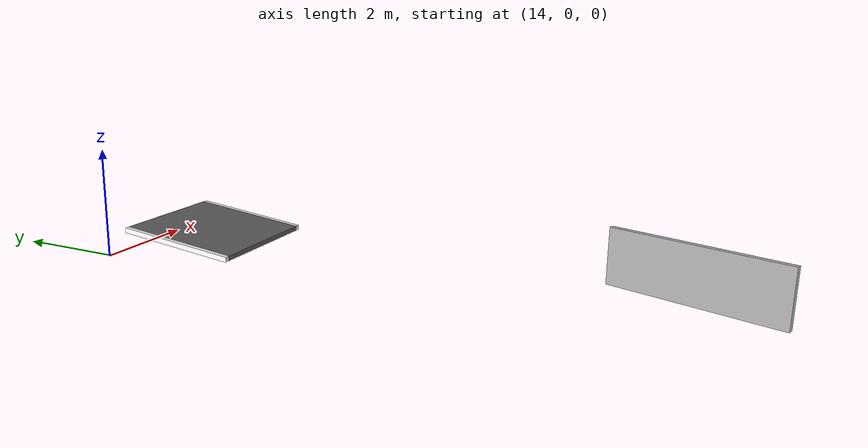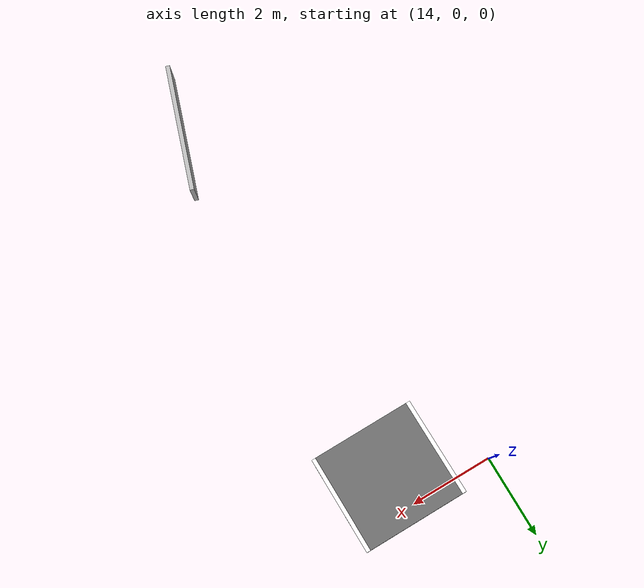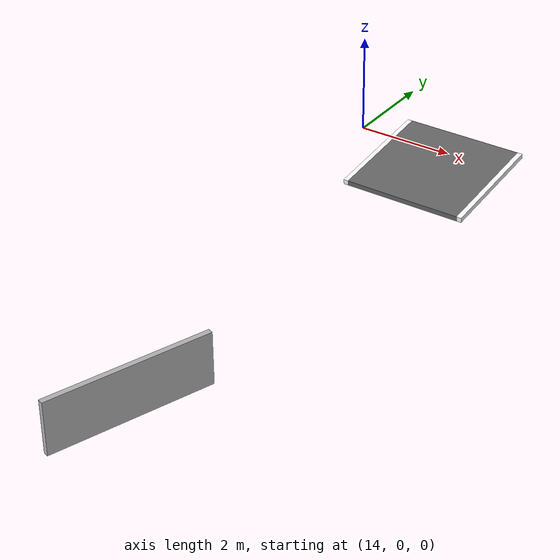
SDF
<sdf version="1.7">
 <world name="default">
  <model name="barricade_2">
   <static>1</static>
   <pose>16.1541 -10.0442 0.5 0 0 1.2346</pose>
   <link name="link">
    <collision name="collision"><geometry><box><size>3 0.1 1</size></box></geometry></collision>
    <visual name="visual"><geometry><box><size>3 0.1 1</size></box></geometry></visual>
   </link>
  </model>
  <model name="ramp_up">
   <static>1</static>
   <pose>16.1541 -0.8357 0.1 0.1122 0 0</pose>
   <link name="link">
    <collision name="collision">
     <geometry><box><size>2.41 2.41 0.1</size></box></geometry>
     <surface>
      <friction><ode><mu>100</mu><mu2>50</mu2><slip1>0.0</slip1><slip2>0.0</slip2></ode></friction>
     </surface>
    </collision>
    <visual name="visual">
     <geometry><box><size>2.41 2.41 0.1</size></box></geometry>
     <material><ambient>0.4 0.7 0.6 1</ambient><diffuse>0.4 0.4 0.4 1</diffuse></material>
    </visual>
   </link>
  </model>
  <model name="ramp_up_lane_line_left">
   <static>1</static>
   <pose>17.4091 -0.8357 0.1 0.1122 0 0</pose>
   <link name="link">
    <inertial><mass>0.1</mass><inertia><ixx>0.0001</ixx><iyy>0.0001</iyy><izz>0.0001</izz></inertia></inertial>
    <collision name="collision">
     <geometry><box><size>0.1 2.41 0.1</size></box></geometry>
     <surface><friction><ode><mu>0.1</mu><mu2>0.1</mu2></ode></friction></surface>
    </collision>
    <visual name="visual">
     <geometry><box><size>0.1 2.41 0.1</size></box></geometry>
     <material><ambient>1 1 1 1</ambient><diffuse>1 1 1 1</diffuse></material>
    </visual>
   </link>
  </model>
  <model name="ramp_up_lane_line_right">
   <static>1</static>
   <pose>14.8991 -0.8357 0.1 0.1122 0 0</pose>
   <link name="link">
    <inertial><mass>0.1</mass><inertia><ixx>0.0001</ixx><iyy>0.0001</iyy><izz>0.0001</izz></inertia></inertial>
    <collision name="collision">
     <geometry><box><size>0.1 2.41 0.1</size></box></geometry>
     <surface><friction><ode><mu>0.1</mu><mu2>0.1</mu2></ode></friction></surface>
    </collision>
    <visual name="visual">
     <geometry><box><size>0.1 2.41 0.1</size></box></geometry>
     <material><ambient>1 1 1 1</ambient><diffuse>1 1 1 1</diffuse></material>
    </visual>
   </link>
  </model>
 </world>
</sdf>
